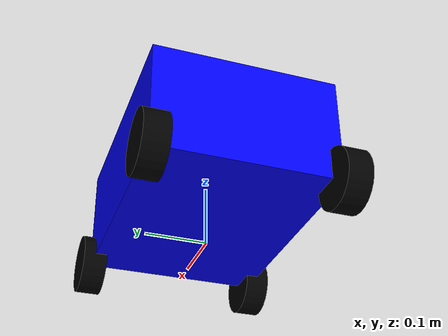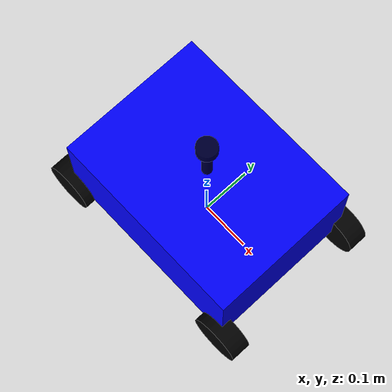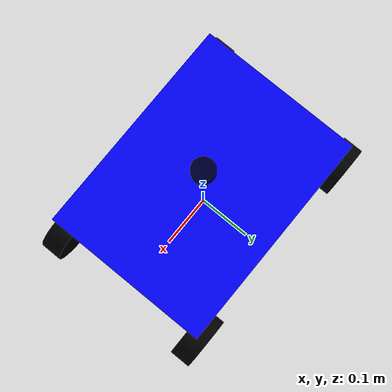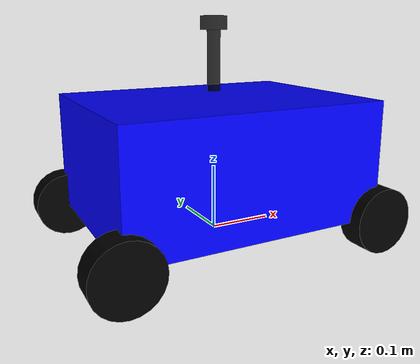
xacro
<?xml version="1.0" encoding="utf-8"?>
<robot xmlns:xacro="http://www.ros.org/wiki/xacro" name="car">

  <!-- 包含主体文件 -->
  <xacro:include filename="$(find drob_control)/urdf/drob/base.urdf.xacro" />

  <!-- 包含轮子文件 -->
  <xacro:include filename="$(find drob_control)/urdf/drob/action/wheel.urdf.xacro" />

  <!-- 包含IMU组件文件 -->
  <xacro:include filename="$(find drob_control)/urdf/drob/sensor/imu.urdf.xacro" />

  <!-- 包含雷达组件文件 -->
  <xacro:include filename="$(find drob_control)/urdf/drob/sensor/lidar.urdf.xacro" />

  <!-- 包含ROS2 Control配置 -->
  <xacro:include filename="$(find drob_control)/urdf/drob/drob.control.xacro" />

  <!-- 调用ROS2 Control配置宏 -->
  <xacro:drob_ros2_control />

  <!-- 包含传感器插件 -->
  <xacro:include filename="$(find drob_control)/urdf/drob/plugins/gazebo_sensor_plugin.xacro" />

  <!-- 调用传感器插件宏 -->
  <xacro:gazebo_sensor_plugin />

  <!-- 添加雷达到小车顶部 -->
  <xacro:lidar_xacro xyz="0 0 0.15" />

</robot>

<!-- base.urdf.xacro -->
<!-- 汽车主体 xacro 文件 -->

<robot xmlns:xacro="http://www.ros.org/wiki/xacro">

  <!-- 定义材料 -->
  <material name="white">
    <color rgba="1 1 1 1" />
  </material>

  <material name="blue">
    <color rgba="0 0 1 1" />
  </material>

  <material name="black">
    <color rgba="0 0 0 1" />
  </material>

  <!-- base_footprint 虚拟链接 - 用于定位机器人在地面上的位置 -->
  <link name="base_footprint" />

  <!-- base_footprint 到 base_link 的固定关节 -->
  <joint name="base_footprint_joint" type="fixed">
    <origin xyz="0 0 0.12" rpy="0 0 0" />
    <parent link="base_footprint" />
    <child link="base_link" />
  </joint>

  <!-- 主体链接 -->
  <link name="base_link">
    <inertial>
      <origin xyz="0 0 -0.09" rpy="0 0 0" />
      <mass value="5.0" />
      <inertia
        ixx="0.2"
        ixy="0"
        ixz="0"
        iyy="0.15"
        iyz="0"
        izz="0.25" />
    </inertial>
    <visual>
      <origin xyz="0 0 0" rpy="0 0 0" />
      <geometry>
        <box size="0.4 0.3 0.18" />
      </geometry>
      <material name="blue" />
    </visual>
    <collision>
      <origin xyz="0 0 0" rpy="0 0 0" />
      <geometry>
        <box size="0.4 0.3 0.18" />
      </geometry>
    </collision>
  </link>

  <!-- Gazebo 标签 -->
  <gazebo reference="base_link">
    <material>Gazebo/Blue</material>
    <mu1>0.3</mu1>
    <mu2>0.3</mu2>
    <kp>1000000.0</kp>
    <kd>100.0</kd>
  </gazebo>

</robot>

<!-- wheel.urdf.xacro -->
<!-- 汽车轮子 xacro 文件 -->
<robot xmlns:xacro="http://www.ros.org/wiki/xacro">

  <!-- 四个轮子链接 -->
  <link name="rfw">
    <inertial>
      <origin xyz="0 0 0" rpy="0 0 0" />
      <mass value="0.8" />
      <inertia
        ixx="0.001"
        ixy="0"
        ixz="0"
        iyy="0.001"
        iyz="0"
        izz="0.001" />
    </inertial>
    <visual>
      <origin xyz="0 0 0" rpy="0 0 0" />
      <geometry>
        <cylinder radius="0.05" length="0.04" />
      </geometry>
      <material name="black" />
    </visual>
    <collision>
      <origin xyz="0 0 0" rpy="0 0 0" />
      <geometry>
        <cylinder radius="0.05" length="0.04" />
      </geometry>
    </collision>
  </link>

  <link name="lfw">
    <inertial>
      <origin xyz="0 0 0" rpy="0 0 0" />
      <mass value="0.8" />
      <inertia
        ixx="0.001"
        ixy="0"
        ixz="0"
        iyy="0.001"
        iyz="0"
        izz="0.001" />
    </inertial>
    <visual>
      <origin xyz="0 0 0" rpy="0 0 0" />
      <geometry>
        <cylinder radius="0.05" length="0.04" />
      </geometry>
      <material name="black" />
    </visual>
    <collision>
      <origin xyz="0 0 0" rpy="0 0 0" />
      <geometry>
        <cylinder radius="0.05" length="0.04" />
      </geometry>
    </collision>
  </link>

  <link name="rbw">
    <inertial>
      <origin xyz="0 0 0" rpy="0 0 0" />
      <mass value="0.8" />
      <inertia
        ixx="0.001"
        ixy="0"
        ixz="0"
        iyy="0.001"
        iyz="0"
        izz="0.001" />
    </inertial>
    <visual>
      <origin xyz="0 0 0" rpy="0 0 0" />
      <geometry>
        <cylinder radius="0.05" length="0.04" />
      </geometry>
      <material name="black" />
    </visual>
    <collision>
      <origin xyz="0 0 0" rpy="0 0 0" />
      <geometry>
        <cylinder radius="0.05" length="0.04" />
      </geometry>
    </collision>
  </link>

  <link name="lbw">
    <inertial>
      <origin xyz="0 0 0" rpy="0 0 0" />
      <mass value="0.8" />
      <inertia
        ixx="0.001"
        ixy="0"
        ixz="0"
        iyy="0.001"
        iyz="0"
        izz="0.001" />
    </inertial>
    <visual>
      <origin xyz="0 0 0" rpy="0 0 0" />
      <geometry>
        <cylinder radius="0.05" length="0.04" />
      </geometry>
      <material name="black" />
    </visual>
    <collision>
      <origin xyz="0 0 0" rpy="0 0 0" />
      <geometry>
        <cylinder radius="0.05" length="0.04" />
      </geometry>
    </collision>
  </link>

  <!-- 四个轮子关节 -->
  <joint name="rfj" type="continuous">
    <origin xyz="-0.2 -0.15 -0.09" rpy="1.5708 0 0" />
    <parent link="base_link" />
    <child link="rfw" />
    <axis xyz="0 0 -1" />
  </joint>

  <joint name="lfj" type="continuous">
    <origin xyz="-0.2 0.15 -0.09" rpy="1.5708 0 0" />
    <parent link="base_link" />
    <child link="lfw" />
    <axis xyz="0 0 -1" />
  </joint>

  <joint name="rbj" type="continuous">
    <origin xyz="0.2 -0.15 -0.09" rpy="1.5708 0 0" />
    <parent link="base_link" />
    <child link="rbw" />
    <axis xyz="0 0 -1" />
  </joint>

  <joint name="lbj" type="continuous">
    <origin xyz="0.2 0.15 -0.09" rpy="1.5708 0 0" />
    <parent link="base_link" />
    <child link="lbw" />
    <axis xyz="0 0 -1" />
  </joint>

  <!-- Gazebo标签 -->
  <gazebo reference="rfw">
    <material>Gazebo/Black</material>
    <mu1>0.8</mu1>
    <mu2>0.8</mu2>
    <kp>1000000.0</kp>
    <kd>50.0</kd>
    <selfCollide>false</selfCollide>
    <minDepth>0.001</minDepth>
  </gazebo>

  <gazebo reference="lfw">
    <material>Gazebo/Black</material>
    <mu1>0.8</mu1>
    <mu2>0.8</mu2>
    <kp>1000000.0</kp>
    <kd>50.0</kd>
    <selfCollide>false</selfCollide>
    <minDepth>0.001</minDepth>
  </gazebo>

  <gazebo reference="rbw">
    <material>Gazebo/Black</material>
    <mu1>0.8</mu1>
    <mu2>0.8</mu2>
    <kp>1000000.0</kp>
    <kd>50.0</kd>
    <selfCollide>false</selfCollide>
    <minDepth>0.001</minDepth>
  </gazebo>

  <gazebo reference="lbw">
    <material>Gazebo/Black</material>
    <mu1>0.8</mu1>
    <mu2>0.8</mu2>
    <kp>1000000.0</kp>
    <kd>50.0</kd>
    <selfCollide>false</selfCollide>
    <minDepth>0.001</minDepth>
  </gazebo>

</robot>

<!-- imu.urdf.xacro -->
<!-- IMU组件 xacro 文件 -->

<robot xmlns:xacro="http://www.ros.org/wiki/xacro">

  <!-- IMU链接 -->
  <link name="imu_link">
    <inertial>
      <origin xyz="0 0 0" rpy="0 0 0" />
      <mass value="0.01" />
      <inertia
        ixx="0.0001"
        ixy="0"
        ixz="0"
        iyy="0.0001"
        iyz="0"
        izz="0.0001" />
    </inertial>
    <visual>
      <origin xyz="0 0 0" rpy="0 0 0" />
      <geometry>
        <box size="0.02 0.02 0.01" />
      </geometry>
      <material name="red" />
    </visual>
    <collision>
      <origin xyz="0 0 0" rpy="0 0 0" />
      <geometry>
        <box size="0.02 0.02 0.01" />
      </geometry>
    </collision>
  </link>

  <!-- IMU关节 - 固定在机器人主体上方 -->
  <joint name="imu_joint" type="fixed">
    <origin xyz="0 0 0" rpy="0 0 0" />
    <parent link="base_link" />
    <child link="imu_link" />
  </joint>

  <!-- 红色材料定义 -->
  <material name="red">
    <color rgba="1 0 0 1" />
  </material>

</robot>

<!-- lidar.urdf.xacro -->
<!-- 雷达传感器 xacro 文件 -->

<robot xmlns:xacro="http://www.ros.org/wiki/xacro">

  <!-- 雷达宏定义 -->
  <xacro:macro name="lidar_xacro" params="xyz">

    <!-- ============雷达支撑杆================ -->
    <link name="lidar_cylinder_link">
      <inertial>
        <origin xyz="0 0 0" rpy="0 0 0" />
        <mass value="0.01" />
        <inertia
          ixx="0.0001"
          ixy="0"
          ixz="0"
          iyy="0.0001"
          iyz="0"
          izz="0.0001" />
      </inertial>
      <visual>
        <origin xyz="0 0 0" rpy="0 0 0" />
        <geometry>
          <cylinder length="0.10" radius="0.01" />
        </geometry>
        <material name="black">
          <color rgba="0.0 0.0 0.0 0.8" />
        </material>
      </visual>
      <collision>
        <origin xyz="0 0 0" rpy="0 0 0" />
        <geometry>
          <cylinder length="0.10" radius="0.01" />
        </geometry>
      </collision>
    </link>

    <joint name="lidar_cylinder_joint" type="fixed">
      <parent link="base_link" />
      <child link="lidar_cylinder_link" />
      <origin xyz="${xyz}" />
    </joint>

    <!-- ============雷达传感器================ -->
    <link name="lidar_link">
      <inertial>
        <origin xyz="0 0 0" rpy="0 0 0" />
        <mass value="0.03" />
        <inertia
          ixx="0.0001"
          ixy="0"
          ixz="0"
          iyy="0.0001"
          iyz="0"
          izz="0.0001" />
      </inertial>
      <visual>
        <origin xyz="0 0 0" rpy="0 0 0" />
        <geometry>
          <cylinder length="0.02" radius="0.02" />
        </geometry>
        <material name="black">
          <color rgba="0.0 0.0 0.0 0.8" />
        </material>
      </visual>
      <collision>
        <origin xyz="0 0 0" rpy="0 0 0" />
        <geometry>
          <cylinder length="0.02" radius="0.02" />
        </geometry>
      </collision>
    </link>

    <joint name="lidar_joint" type="fixed">
      <parent link="lidar_cylinder_link" />
      <child link="lidar_link" />
      <origin xyz="0 0 0.05" />
    </joint>

    <!-- Gazebo标签 -->
    <gazebo reference="lidar_cylinder_link">
      <material>Gazebo/Black</material>
      <mu1>0.2</mu1>
      <mu2>0.2</mu2>
    </gazebo>

    <gazebo reference="lidar_link">
      <material>Gazebo/Black</material>
      <mu1>0.2</mu1>
      <mu2>0.2</mu2>
    </gazebo>

  </xacro:macro>

</robot>
